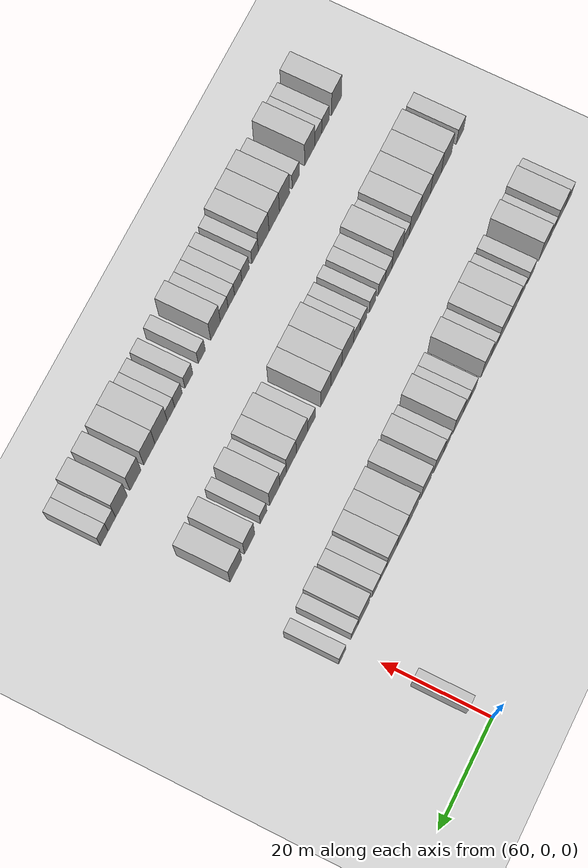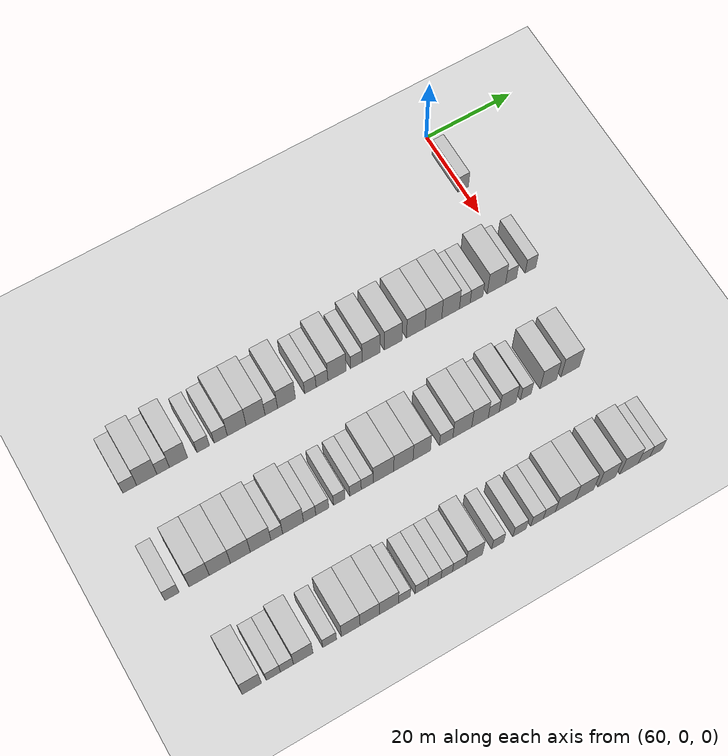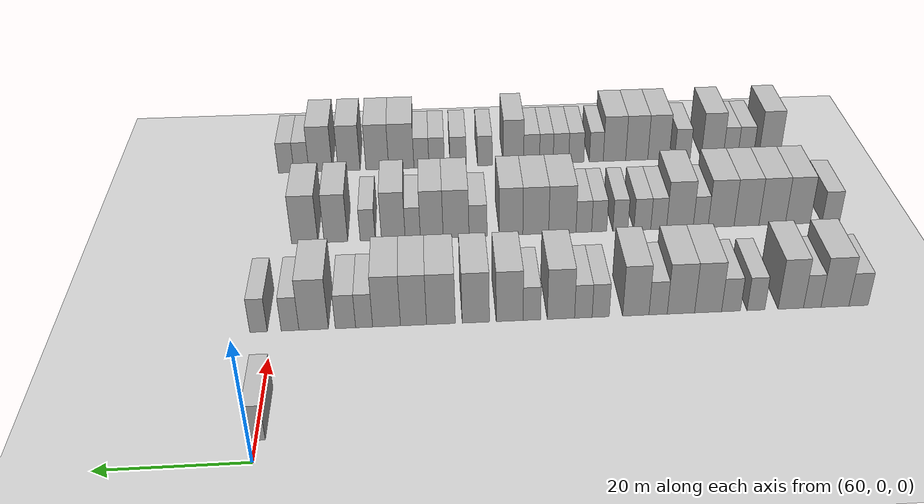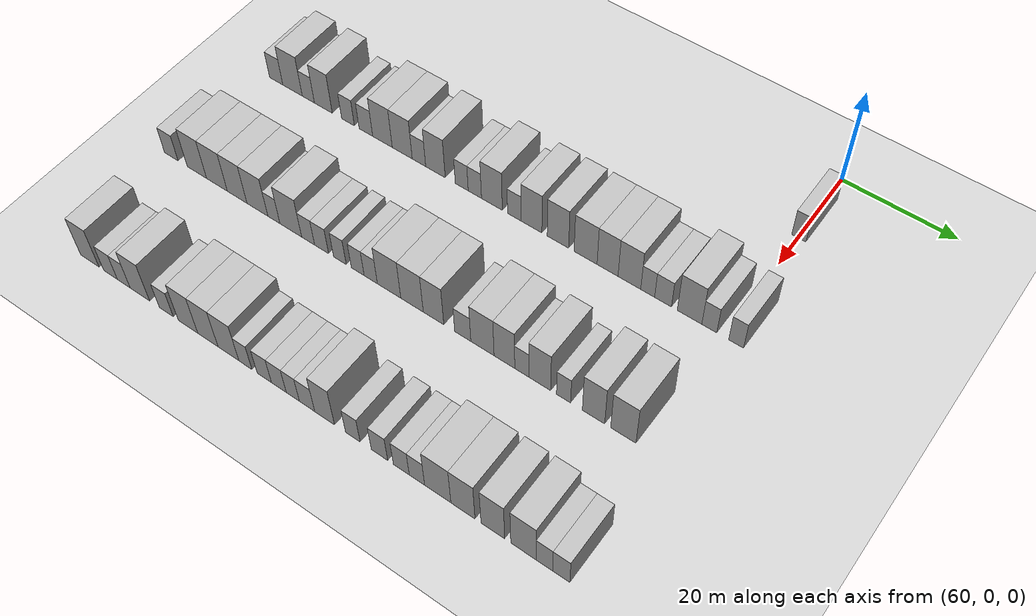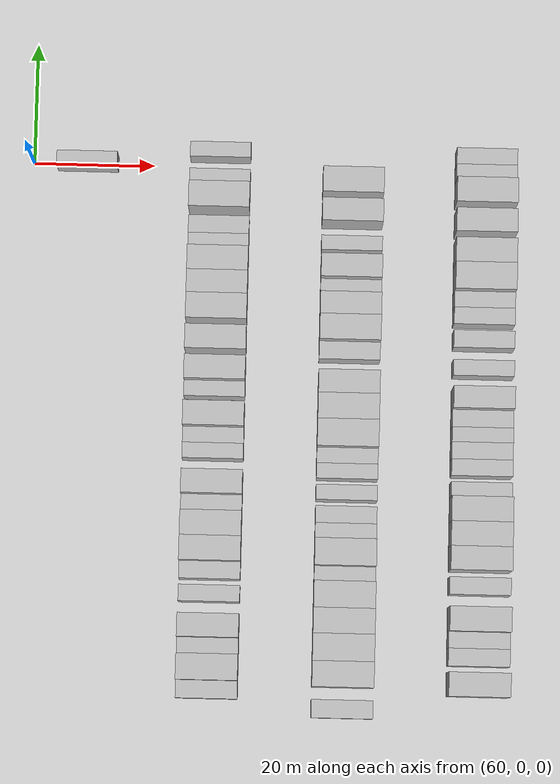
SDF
<sdf version="1.6">
 <world name="default">
  <include>
   <name>ground_plane_2</name>
   <uri>model://HANNAS_ground_plane</uri>
   <pose>100 0 0  0 0 0</pose>
  </include>
  <model name="building_479">
   <static>1</static>
   <pose>69.0000 0.0624 0 0.000000 0.000000 0.000000</pose>
   <link name="link">
    <pose>0 0 3.00 0 0 0</pose>
    <collision name="collision"><geometry><box><size>10.0000 2.4668 6.0000</size></box></geometry></collision>
    <visual name="visual">
     <cast_shadows>0</cast_shadows>
     <geometry><box><size>10.0000 2.4668 6.0000</size></box></geometry>
     <material>
      <script>
       <uri>model://HANNAS_wall/materials/scripts</uri>
       <uri>model://HANNAS_wall/materials/textures</uri>
       <name>vrc/HANNAS_wall</name>
      </script>
     </material>
    </visual>
   </link>
  </model>
  <model name="building_655">
   <static>1</static>
   <pose>91.0000 -86.5257 0 0.000000 0.000000 0.000000</pose>
   <link name="link">
    <pose>0 0 3.00 0 0 0</pose>
    <collision name="collision"><geometry><box><size>10.0000 2.9233 6.0000</size></box></geometry></collision>
    <visual name="visual">
     <cast_shadows>0</cast_shadows>
     <geometry><box><size>10.0000 2.9233 6.0000</size></box></geometry>
     <material>
      <script>
       <uri>model://HANNAS_wall/materials/scripts</uri>
       <uri>model://HANNAS_wall/materials/textures</uri>
       <name>vrc/HANNAS_wall</name>
      </script>
     </material>
    </visual>
   </link>
  </model>
  <model name="building_656">
   <static>1</static>
   <pose>91.0000 -82.9416 0 0.000000 0.000000 0.000000</pose>
   <link name="link">
    <pose>0 0 4.50 0 0 0</pose>
    <collision name="collision"><geometry><box><size>10.0000 4.2447 9.0000</size></box></geometry></collision>
    <visual name="visual">
     <cast_shadows>0</cast_shadows>
     <geometry><box><size>10.0000 4.2447 9.0000</size></box></geometry>
     <material>
      <script>
       <uri>model://HANNAS_wall/materials/scripts</uri>
       <uri>model://HANNAS_wall/materials/textures</uri>
       <name>vrc/HANNAS_wall</name>
      </script>
     </material>
    </visual>
   </link>
  </model>
  <model name="building_657">
   <static>1</static>
   <pose>91.0000 -79.4983 0 0.000000 0.000000 0.000000</pose>
   <link name="link">
    <pose>0 0 3.00 0 0 0</pose>
    <collision name="collision"><geometry><box><size>10.0000 2.6419 6.0000</size></box></geometry></collision>
    <visual name="visual">
     <cast_shadows>0</cast_shadows>
     <geometry><box><size>10.0000 2.6419 6.0000</size></box></geometry>
     <material>
      <script>
       <uri>model://HANNAS_wall/materials/scripts</uri>
       <uri>model://HANNAS_wall/materials/textures</uri>
       <name>vrc/HANNAS_wall</name>
      </script>
     </material>
    </visual>
   </link>
  </model>
  <model name="building_658">
   <static>1</static>
   <pose>91.0000 -76.2589 0 0.000000 0.000000 0.000000</pose>
   <link name="link">
    <pose>0 0 4.50 0 0 0</pose>
    <collision name="collision"><geometry><box><size>10.0000 3.8370 9.0000</size></box></geometry></collision>
    <visual name="visual">
     <cast_shadows>0</cast_shadows>
     <geometry><box><size>10.0000 3.8370 9.0000</size></box></geometry>
     <material>
      <script>
       <uri>model://HANNAS_wall/materials/scripts</uri>
       <uri>model://HANNAS_wall/materials/textures</uri>
       <name>vrc/HANNAS_wall</name>
      </script>
     </material>
    </visual>
   </link>
  </model>
  <model name="building_659">
   <static>1</static>
   <pose>91.0000 -71.0000 0 0.000000 0.000000 0.000000</pose>
   <link name="link">
    <pose>0 0 3.00 0 0 0</pose>
    <collision name="collision"><geometry><box><size>10.0000 2.6807 6.0000</size></box></geometry></collision>
    <visual name="visual">
     <cast_shadows>0</cast_shadows>
     <geometry><box><size>10.0000 2.6807 6.0000</size></box></geometry>
     <material>
      <script>
       <uri>model://HANNAS_wall/materials/scripts</uri>
       <uri>model://HANNAS_wall/materials/textures</uri>
       <name>vrc/HANNAS_wall</name>
      </script>
     </material>
    </visual>
   </link>
  </model>
  <model name="building_660">
   <static>1</static>
   <pose>91.0000 -67.2448 0 0.000000 0.000000 0.000000</pose>
   <link name="link">
    <pose>0 0 3.00 0 0 0</pose>
    <collision name="collision"><geometry><box><size>10.0000 2.8297 6.0000</size></box></geometry></collision>
    <visual name="visual">
     <cast_shadows>0</cast_shadows>
     <geometry><box><size>10.0000 2.8297 6.0000</size></box></geometry>
     <material>
      <script>
       <uri>model://HANNAS_wall/materials/scripts</uri>
       <uri>model://HANNAS_wall/materials/textures</uri>
       <name>vrc/HANNAS_wall</name>
      </script>
     </material>
    </visual>
   </link>
  </model>
  <model name="building_661">
   <static>1</static>
   <pose>91.0000 -63.8082 0 0.000000 0.000000 0.000000</pose>
   <link name="link">
    <pose>0 0 4.50 0 0 0</pose>
    <collision name="collision"><geometry><box><size>10.0000 4.0435 9.0000</size></box></geometry></collision>
    <visual name="visual">
     <cast_shadows>0</cast_shadows>
     <geometry><box><size>10.0000 4.0435 9.0000</size></box></geometry>
     <material>
      <script>
       <uri>model://HANNAS_wall/materials/scripts</uri>
       <uri>model://HANNAS_wall/materials/textures</uri>
       <name>vrc/HANNAS_wall</name>
      </script>
     </material>
    </visual>
   </link>
  </model>
  <model name="building_662">
   <static>1</static>
   <pose>91.0000 -59.7412 0 0.000000 0.000000 0.000000</pose>
   <link name="link">
    <pose>0 0 4.50 0 0 0</pose>
    <collision name="collision"><geometry><box><size>10.0000 4.0904 9.0000</size></box></geometry></collision>
    <visual name="visual">
     <cast_shadows>0</cast_shadows>
     <geometry><box><size>10.0000 4.0904 9.0000</size></box></geometry>
     <material>
      <script>
       <uri>model://HANNAS_wall/materials/scripts</uri>
       <uri>model://HANNAS_wall/materials/textures</uri>
       <name>vrc/HANNAS_wall</name>
      </script>
     </material>
    </visual>
   </link>
  </model>
  <model name="building_663">
   <static>1</static>
   <pose>91.0000 -56.3345 0 0.000000 0.000000 0.000000</pose>
   <link name="link">
    <pose>0 0 3.00 0 0 0</pose>
    <collision name="collision"><geometry><box><size>10.0000 2.7231 6.0000</size></box></geometry></collision>
    <visual name="visual">
     <cast_shadows>0</cast_shadows>
     <geometry><box><size>10.0000 2.7231 6.0000</size></box></geometry>
     <material>
      <script>
       <uri>model://HANNAS_wall/materials/scripts</uri>
       <uri>model://HANNAS_wall/materials/textures</uri>
       <name>vrc/HANNAS_wall</name>
      </script>
     </material>
    </visual>
   </link>
  </model>
  <model name="building_664">
   <static>1</static>
   <pose>91.0000 -53.0194 0 0.000000 0.000000 0.000000</pose>
   <link name="link">
    <pose>0 0 4.50 0 0 0</pose>
    <collision name="collision"><geometry><box><size>10.0000 3.9071 9.0000</size></box></geometry></collision>
    <visual name="visual">
     <cast_shadows>0</cast_shadows>
     <geometry><box><size>10.0000 3.9071 9.0000</size></box></geometry>
     <material>
      <script>
       <uri>model://HANNAS_wall/materials/scripts</uri>
       <uri>model://HANNAS_wall/materials/textures</uri>
       <name>vrc/HANNAS_wall</name>
      </script>
     </material>
    </visual>
   </link>
  </model>
  <model name="building_665">
   <static>1</static>
   <pose>91.0000 -47.7983 0 0.000000 0.000000 0.000000</pose>
   <link name="link">
    <pose>0 0 3.00 0 0 0</pose>
    <collision name="collision"><geometry><box><size>10.0000 2.5350 6.0000</size></box></geometry></collision>
    <visual name="visual">
     <cast_shadows>0</cast_shadows>
     <geometry><box><size>10.0000 2.5350 6.0000</size></box></geometry>
     <material>
      <script>
       <uri>model://HANNAS_wall/materials/scripts</uri>
       <uri>model://HANNAS_wall/materials/textures</uri>
       <name>vrc/HANNAS_wall</name>
      </script>
     </material>
    </visual>
   </link>
  </model>
  <model name="building_666">
   <static>1</static>
   <pose>91.0000 -45.2319 0 0.000000 0.000000 0.000000</pose>
   <link name="link">
    <pose>0 0 3.00 0 0 0</pose>
    <collision name="collision"><geometry><box><size>10.0000 2.5978 6.0000</size></box></geometry></collision>
    <visual name="visual">
     <cast_shadows>0</cast_shadows>
     <geometry><box><size>10.0000 2.5978 6.0000</size></box></geometry>
     <material>
      <script>
       <uri>model://HANNAS_wall/materials/scripts</uri>
       <uri>model://HANNAS_wall/materials/textures</uri>
       <name>vrc/HANNAS_wall</name>
      </script>
     </material>
    </visual>
   </link>
  </model>
  <model name="building_667">
   <static>1</static>
   <pose>91.0000 -41.9193 0 0.000000 0.000000 0.000000</pose>
   <link name="link">
    <pose>0 0 4.50 0 0 0</pose>
    <collision name="collision"><geometry><box><size>10.0000 4.0274 9.0000</size></box></geometry></collision>
    <visual name="visual">
     <cast_shadows>0</cast_shadows>
     <geometry><box><size>10.0000 4.0274 9.0000</size></box></geometry>
     <material>
      <script>
       <uri>model://HANNAS_wall/materials/scripts</uri>
       <uri>model://HANNAS_wall/materials/textures</uri>
       <name>vrc/HANNAS_wall</name>
      </script>
     </material>
    </visual>
   </link>
  </model>
  <model name="building_668">
   <static>1</static>
   <pose>91.0000 -37.6197 0 0.000000 0.000000 0.000000</pose>
   <link name="link">
    <pose>0 0 3.00 0 0 0</pose>
    <collision name="collision"><geometry><box><size>10.0000 2.5719 6.0000</size></box></geometry></collision>
    <visual name="visual">
     <cast_shadows>0</cast_shadows>
     <geometry><box><size>10.0000 2.5719 6.0000</size></box></geometry>
     <material>
      <script>
       <uri>model://HANNAS_wall/materials/scripts</uri>
       <uri>model://HANNAS_wall/materials/textures</uri>
       <name>vrc/HANNAS_wall</name>
      </script>
     </material>
    </visual>
   </link>
  </model>
  <model name="building_669">
   <static>1</static>
   <pose>91.0000 -34.3654 0 0.000000 0.000000 0.000000</pose>
   <link name="link">
    <pose>0 0 4.50 0 0 0</pose>
    <collision name="collision"><geometry><box><size>10.0000 3.9368 9.0000</size></box></geometry></collision>
    <visual name="visual">
     <cast_shadows>0</cast_shadows>
     <geometry><box><size>10.0000 3.9368 9.0000</size></box></geometry>
     <material>
      <script>
       <uri>model://HANNAS_wall/materials/scripts</uri>
       <uri>model://HANNAS_wall/materials/textures</uri>
       <name>vrc/HANNAS_wall</name>
      </script>
     </material>
    </visual>
   </link>
  </model>
  <model name="building_670">
   <static>1</static>
   <pose>91.0000 -29.4065 0 0.000000 0.000000 0.000000</pose>
   <link name="link">
    <pose>0 0 4.50 0 0 0</pose>
    <collision name="collision"><geometry><box><size>10.0000 3.9808 9.0000</size></box></geometry></collision>
    <visual name="visual">
     <cast_shadows>0</cast_shadows>
     <geometry><box><size>10.0000 3.9808 9.0000</size></box></geometry>
     <material>
      <script>
       <uri>model://HANNAS_wall/materials/scripts</uri>
       <uri>model://HANNAS_wall/materials/textures</uri>
       <name>vrc/HANNAS_wall</name>
      </script>
     </material>
    </visual>
   </link>
  </model>
  <model name="building_671">
   <static>1</static>
   <pose>91.0000 -24.3169 0 0.000000 0.000000 0.000000</pose>
   <link name="link">
    <pose>0 0 4.50 0 0 0</pose>
    <collision name="collision"><geometry><box><size>10.0000 4.1984 9.0000</size></box></geometry></collision>
    <visual name="visual">
     <cast_shadows>0</cast_shadows>
     <geometry><box><size>10.0000 4.1984 9.0000</size></box></geometry>
     <material>
      <script>
       <uri>model://HANNAS_wall/materials/scripts</uri>
       <uri>model://HANNAS_wall/materials/textures</uri>
       <name>vrc/HANNAS_wall</name>
      </script>
     </material>
    </visual>
   </link>
  </model>
  <model name="building_672">
   <static>1</static>
   <pose>91.0000 -20.3196 0 0.000000 0.000000 0.000000</pose>
   <link name="link">
    <pose>0 0 4.50 0 0 0</pose>
    <collision name="collision"><geometry><box><size>10.0000 3.7961 9.0000</size></box></geometry></collision>
    <visual name="visual">
     <cast_shadows>0</cast_shadows>
     <geometry><box><size>10.0000 3.7961 9.0000</size></box></geometry>
     <material>
      <script>
       <uri>model://HANNAS_wall/materials/scripts</uri>
       <uri>model://HANNAS_wall/materials/textures</uri>
       <name>vrc/HANNAS_wall</name>
      </script>
     </material>
    </visual>
   </link>
  </model>
  <model name="building_673">
   <static>1</static>
   <pose>91.0000 -16.4041 0 0.000000 0.000000 0.000000</pose>
   <link name="link">
    <pose>0 0 4.50 0 0 0</pose>
    <collision name="collision"><geometry><box><size>10.0000 4.0349 9.0000</size></box></geometry></collision>
    <visual name="visual">
     <cast_shadows>0</cast_shadows>
     <geometry><box><size>10.0000 4.0349 9.0000</size></box></geometry>
     <material>
      <script>
       <uri>model://HANNAS_wall/materials/scripts</uri>
       <uri>model://HANNAS_wall/materials/textures</uri>
       <name>vrc/HANNAS_wall</name>
      </script>
     </material>
    </visual>
   </link>
  </model>
  <model name="building_674">
   <static>1</static>
   <pose>91.0000 -13.1547 0 0.000000 0.000000 0.000000</pose>
   <link name="link">
    <pose>0 0 3.00 0 0 0</pose>
    <collision name="collision"><geometry><box><size>10.0000 2.4639 6.0000</size></box></geometry></collision>
    <visual name="visual">
     <cast_shadows>0</cast_shadows>
     <geometry><box><size>10.0000 2.4639 6.0000</size></box></geometry>
     <material>
      <script>
       <uri>model://HANNAS_wall/materials/scripts</uri>
       <uri>model://HANNAS_wall/materials/textures</uri>
       <name>vrc/HANNAS_wall</name>
      </script>
     </material>
    </visual>
   </link>
  </model>
  <model name="building_675">
   <static>1</static>
   <pose>91.0000 -10.4546 0 0.000000 0.000000 0.000000</pose>
   <link name="link">
    <pose>0 0 3.00 0 0 0</pose>
    <collision name="collision"><geometry><box><size>10.0000 2.9363 6.0000</size></box></geometry></collision>
    <visual name="visual">
     <cast_shadows>0</cast_shadows>
     <geometry><box><size>10.0000 2.9363 6.0000</size></box></geometry>
     <material>
      <script>
       <uri>model://HANNAS_wall/materials/scripts</uri>
       <uri>model://HANNAS_wall/materials/textures</uri>
       <name>vrc/HANNAS_wall</name>
      </script>
     </material>
    </visual>
   </link>
  </model>
  <model name="building_676">
   <static>1</static>
   <pose>91.0000 -5.8685 0 0.000000 0.000000 0.000000</pose>
   <link name="link">
    <pose>0 0 4.50 0 0 0</pose>
    <collision name="collision"><geometry><box><size>10.0000 4.2360 9.0000</size></box></geometry></collision>
    <visual name="visual">
     <cast_shadows>0</cast_shadows>
     <geometry><box><size>10.0000 4.2360 9.0000</size></box></geometry>
     <material>
      <script>
       <uri>model://HANNAS_wall/materials/scripts</uri>
       <uri>model://HANNAS_wall/materials/textures</uri>
       <name>vrc/HANNAS_wall</name>
      </script>
     </material>
    </visual>
   </link>
  </model>
  <model name="building_677">
   <static>1</static>
   <pose>91.0000 -2.4733 0 0.000000 0.000000 0.000000</pose>
   <link name="link">
    <pose>0 0 3.00 0 0 0</pose>
    <collision name="collision"><geometry><box><size>10.0000 2.5545 6.0000</size></box></geometry></collision>
    <visual name="visual">
     <cast_shadows>0</cast_shadows>
     <geometry><box><size>10.0000 2.5545 6.0000</size></box></geometry>
     <material>
      <script>
       <uri>model://HANNAS_wall/materials/scripts</uri>
       <uri>model://HANNAS_wall/materials/textures</uri>
       <name>vrc/HANNAS_wall</name>
      </script>
     </material>
    </visual>
   </link>
  </model>
  <model name="building_678">
   <static>1</static>
   <pose>91.0000 2.0546 0 0.000000 0.000000 0.000000</pose>
   <link name="link">
    <pose>0 0 3.00 0 0 0</pose>
    <collision name="collision"><geometry><box><size>10.0000 2.5013 6.0000</size></box></geometry></collision>
    <visual name="visual">
     <cast_shadows>0</cast_shadows>
     <geometry><box><size>10.0000 2.5013 6.0000</size></box></geometry>
     <material>
      <script>
       <uri>model://HANNAS_wall/materials/scripts</uri>
       <uri>model://HANNAS_wall/materials/textures</uri>
       <name>vrc/HANNAS_wall</name>
      </script>
     </material>
    </visual>
   </link>
  </model>
  <model name="building_845">
   <static>1</static>
   <pose>113.0000 -89.1876 0 0.000000 0.000000 0.000000</pose>
   <link name="link">
    <pose>0 0 3.00 0 0 0</pose>
    <collision name="collision"><geometry><box><size>10.0000 2.9720 6.0000</size></box></geometry></collision>
    <visual name="visual">
     <cast_shadows>0</cast_shadows>
     <geometry><box><size>10.0000 2.9720 6.0000</size></box></geometry>
     <material>
      <script>
       <uri>model://HANNAS_wall/materials/scripts</uri>
       <uri>model://HANNAS_wall/materials/textures</uri>
       <name>vrc/HANNAS_wall</name>
      </script>
     </material>
    </visual>
   </link>
  </model>
  <model name="building_846">
   <static>1</static>
   <pose>113.0000 -83.6121 0 0.000000 0.000000 0.000000</pose>
   <link name="link">
    <pose>0 0 4.50 0 0 0</pose>
    <collision name="collision"><geometry><box><size>10.0000 4.1791 9.0000</size></box></geometry></collision>
    <visual name="visual">
     <cast_shadows>0</cast_shadows>
     <geometry><box><size>10.0000 4.1791 9.0000</size></box></geometry>
     <material>
      <script>
       <uri>model://HANNAS_wall/materials/scripts</uri>
       <uri>model://HANNAS_wall/materials/textures</uri>
       <name>vrc/HANNAS_wall</name>
      </script>
     </material>
    </visual>
   </link>
  </model>
  <model name="building_847">
   <static>1</static>
   <pose>113.0000 -79.3144 0 0.000000 0.000000 0.000000</pose>
   <link name="link">
    <pose>0 0 4.50 0 0 0</pose>
    <collision name="collision"><geometry><box><size>10.0000 4.4164 9.0000</size></box></geometry></collision>
    <visual name="visual">
     <cast_shadows>0</cast_shadows>
     <geometry><box><size>10.0000 4.4164 9.0000</size></box></geometry>
     <material>
      <script>
       <uri>model://HANNAS_wall/materials/scripts</uri>
       <uri>model://HANNAS_wall/materials/textures</uri>
       <name>vrc/HANNAS_wall</name>
      </script>
     </material>
    </visual>
   </link>
  </model>
  <model name="building_848">
   <static>1</static>
   <pose>113.0000 -75.0384 0 0.000000 0.000000 0.000000</pose>
   <link name="link">
    <pose>0 0 4.50 0 0 0</pose>
    <collision name="collision"><geometry><box><size>10.0000 4.1355 9.0000</size></box></geometry></collision>
    <visual name="visual">
     <cast_shadows>0</cast_shadows>
     <geometry><box><size>10.0000 4.1355 9.0000</size></box></geometry>
     <material>
      <script>
       <uri>model://HANNAS_wall/materials/scripts</uri>
       <uri>model://HANNAS_wall/materials/textures</uri>
       <name>vrc/HANNAS_wall</name>
      </script>
     </material>
    </visual>
   </link>
  </model>
  <model name="building_849">
   <static>1</static>
   <pose>113.0000 -70.8037 0 0.000000 0.000000 0.000000</pose>
   <link name="link">
    <pose>0 0 4.50 0 0 0</pose>
    <collision name="collision"><geometry><box><size>10.0000 4.3338 9.0000</size></box></geometry></collision>
    <visual name="visual">
     <cast_shadows>0</cast_shadows>
     <geometry><box><size>10.0000 4.3338 9.0000</size></box></geometry>
     <material>
      <script>
       <uri>model://HANNAS_wall/materials/scripts</uri>
       <uri>model://HANNAS_wall/materials/textures</uri>
       <name>vrc/HANNAS_wall</name>
      </script>
     </material>
    </visual>
   </link>
  </model>
  <model name="building_850">
   <static>1</static>
   <pose>113.0000 -67.3962 0 0.000000 0.000000 0.000000</pose>
   <link name="link">
    <pose>0 0 3.00 0 0 0</pose>
    <collision name="collision"><geometry><box><size>10.0000 2.4813 6.0000</size></box></geometry></collision>
    <visual name="visual">
     <cast_shadows>0</cast_shadows>
     <geometry><box><size>10.0000 2.4813 6.0000</size></box></geometry>
     <material>
      <script>
       <uri>model://HANNAS_wall/materials/scripts</uri>
       <uri>model://HANNAS_wall/materials/textures</uri>
       <name>vrc/HANNAS_wall</name>
      </script>
     </material>
    </visual>
   </link>
  </model>
  <model name="building_851">
   <static>1</static>
   <pose>113.0000 -63.9504 0 0.000000 0.000000 0.000000</pose>
   <link name="link">
    <pose>0 0 4.50 0 0 0</pose>
    <collision name="collision"><geometry><box><size>10.0000 4.4103 9.0000</size></box></geometry></collision>
    <visual name="visual">
     <cast_shadows>0</cast_shadows>
     <geometry><box><size>10.0000 4.4103 9.0000</size></box></geometry>
     <material>
      <script>
       <uri>model://HANNAS_wall/materials/scripts</uri>
       <uri>model://HANNAS_wall/materials/textures</uri>
       <name>vrc/HANNAS_wall</name>
      </script>
     </material>
    </visual>
   </link>
  </model>
  <model name="building_852">
   <static>1</static>
   <pose>113.0000 -60.4406 0 0.000000 0.000000 0.000000</pose>
   <link name="link">
    <pose>0 0 3.00 0 0 0</pose>
    <collision name="collision"><geometry><box><size>10.0000 2.6092 6.0000</size></box></geometry></collision>
    <visual name="visual">
     <cast_shadows>0</cast_shadows>
     <geometry><box><size>10.0000 2.6092 6.0000</size></box></geometry>
     <material>
      <script>
       <uri>model://HANNAS_wall/materials/scripts</uri>
       <uri>model://HANNAS_wall/materials/textures</uri>
       <name>vrc/HANNAS_wall</name>
      </script>
     </material>
    </visual>
   </link>
  </model>
  <model name="building_853">
   <static>1</static>
   <pose>113.0000 -57.7490 0 0.000000 0.000000 0.000000</pose>
   <link name="link">
    <pose>0 0 3.00 0 0 0</pose>
    <collision name="collision"><geometry><box><size>10.0000 2.7740 6.0000</size></box></geometry></collision>
    <visual name="visual">
     <cast_shadows>0</cast_shadows>
     <geometry><box><size>10.0000 2.7740 6.0000</size></box></geometry>
     <material>
      <script>
       <uri>model://HANNAS_wall/materials/scripts</uri>
       <uri>model://HANNAS_wall/materials/textures</uri>
       <name>vrc/HANNAS_wall</name>
      </script>
     </material>
    </visual>
   </link>
  </model>
  <model name="building_854">
   <static>1</static>
   <pose>113.0000 -54.1233 0 0.000000 0.000000 0.000000</pose>
   <link name="link">
    <pose>0 0 3.00 0 0 0</pose>
    <collision name="collision"><geometry><box><size>10.0000 2.4774 6.0000</size></box></geometry></collision>
    <visual name="visual">
     <cast_shadows>0</cast_shadows>
     <geometry><box><size>10.0000 2.4774 6.0000</size></box></geometry>
     <material>
      <script>
       <uri>model://HANNAS_wall/materials/scripts</uri>
       <uri>model://HANNAS_wall/materials/textures</uri>
       <name>vrc/HANNAS_wall</name>
      </script>
     </material>
    </visual>
   </link>
  </model>
  <model name="building_855">
   <static>1</static>
   <pose>113.0000 -50.6403 0 0.000000 0.000000 0.000000</pose>
   <link name="link">
    <pose>0 0 3.00 0 0 0</pose>
    <collision name="collision"><geometry><box><size>10.0000 2.4886 6.0000</size></box></geometry></collision>
    <visual name="visual">
     <cast_shadows>0</cast_shadows>
     <geometry><box><size>10.0000 2.4886 6.0000</size></box></geometry>
     <material>
      <script>
       <uri>model://HANNAS_wall/materials/scripts</uri>
       <uri>model://HANNAS_wall/materials/textures</uri>
       <name>vrc/HANNAS_wall</name>
      </script>
     </material>
    </visual>
   </link>
  </model>
  <model name="building_856">
   <static>1</static>
   <pose>113.0000 -48.1162 0 0.000000 0.000000 0.000000</pose>
   <link name="link">
    <pose>0 0 3.00 0 0 0</pose>
    <collision name="collision"><geometry><box><size>10.0000 2.5594 6.0000</size></box></geometry></collision>
    <visual name="visual">
     <cast_shadows>0</cast_shadows>
     <geometry><box><size>10.0000 2.5594 6.0000</size></box></geometry>
     <material>
      <script>
       <uri>model://HANNAS_wall/materials/scripts</uri>
       <uri>model://HANNAS_wall/materials/textures</uri>
       <name>vrc/HANNAS_wall</name>
      </script>
     </material>
    </visual>
   </link>
  </model>
  <model name="building_857">
   <static>1</static>
   <pose>113.0000 -44.6010 0 0.000000 0.000000 0.000000</pose>
   <link name="link">
    <pose>0 0 4.50 0 0 0</pose>
    <collision name="collision"><geometry><box><size>10.0000 4.4710 9.0000</size></box></geometry></collision>
    <visual name="visual">
     <cast_shadows>0</cast_shadows>
     <geometry><box><size>10.0000 4.4710 9.0000</size></box></geometry>
     <material>
      <script>
       <uri>model://HANNAS_wall/materials/scripts</uri>
       <uri>model://HANNAS_wall/materials/textures</uri>
       <name>vrc/HANNAS_wall</name>
      </script>
     </material>
    </visual>
   </link>
  </model>
  <model name="building_858">
   <static>1</static>
   <pose>113.0000 -40.2517 0 0.000000 0.000000 0.000000</pose>
   <link name="link">
    <pose>0 0 4.50 0 0 0</pose>
    <collision name="collision"><geometry><box><size>10.0000 4.2276 9.0000</size></box></geometry></collision>
    <visual name="visual">
     <cast_shadows>0</cast_shadows>
     <geometry><box><size>10.0000 4.2276 9.0000</size></box></geometry>
     <material>
      <script>
       <uri>model://HANNAS_wall/materials/scripts</uri>
       <uri>model://HANNAS_wall/materials/textures</uri>
       <name>vrc/HANNAS_wall</name>
      </script>
     </material>
    </visual>
   </link>
  </model>
  <model name="building_859">
   <static>1</static>
   <pose>113.0000 -36.2334 0 0.000000 0.000000 0.000000</pose>
   <link name="link">
    <pose>0 0 4.50 0 0 0</pose>
    <collision name="collision"><geometry><box><size>10.0000 3.8091 9.0000</size></box></geometry></collision>
    <visual name="visual">
     <cast_shadows>0</cast_shadows>
     <geometry><box><size>10.0000 3.8091 9.0000</size></box></geometry>
     <material>
      <script>
       <uri>model://HANNAS_wall/materials/scripts</uri>
       <uri>model://HANNAS_wall/materials/textures</uri>
       <name>vrc/HANNAS_wall</name>
      </script>
     </material>
    </visual>
   </link>
  </model>
  <model name="building_860">
   <static>1</static>
   <pose>113.0000 -30.8569 0 0.000000 0.000000 0.000000</pose>
   <link name="link">
    <pose>0 0 3.00 0 0 0</pose>
    <collision name="collision"><geometry><box><size>10.0000 2.9438 6.0000</size></box></geometry></collision>
    <visual name="visual">
     <cast_shadows>0</cast_shadows>
     <geometry><box><size>10.0000 2.9438 6.0000</size></box></geometry>
     <material>
      <script>
       <uri>model://HANNAS_wall/materials/scripts</uri>
       <uri>model://HANNAS_wall/materials/textures</uri>
       <name>vrc/HANNAS_wall</name>
      </script>
     </material>
    </visual>
   </link>
  </model>
  <model name="building_861">
   <static>1</static>
   <pose>113.0000 -27.2935 0 0.000000 0.000000 0.000000</pose>
   <link name="link">
    <pose>0 0 4.50 0 0 0</pose>
    <collision name="collision"><geometry><box><size>10.0000 4.1831 9.0000</size></box></geometry></collision>
    <visual name="visual">
     <cast_shadows>0</cast_shadows>
     <geometry><box><size>10.0000 4.1831 9.0000</size></box></geometry>
     <material>
      <script>
       <uri>model://HANNAS_wall/materials/scripts</uri>
       <uri>model://HANNAS_wall/materials/textures</uri>
       <name>vrc/HANNAS_wall</name>
      </script>
     </material>
    </visual>
   </link>
  </model>
  <model name="building_862">
   <static>1</static>
   <pose>113.0000 -23.3608 0 0.000000 0.000000 0.000000</pose>
   <link name="link">
    <pose>0 0 4.50 0 0 0</pose>
    <collision name="collision"><geometry><box><size>10.0000 3.6822 9.0000</size></box></geometry></collision>
    <visual name="visual">
     <cast_shadows>0</cast_shadows>
     <geometry><box><size>10.0000 3.6822 9.0000</size></box></geometry>
     <material>
      <script>
       <uri>model://HANNAS_wall/materials/scripts</uri>
       <uri>model://HANNAS_wall/materials/textures</uri>
       <name>vrc/HANNAS_wall</name>
      </script>
     </material>
    </visual>
   </link>
  </model>
  <model name="building_863">
   <static>1</static>
   <pose>113.0000 -20.2940 0 0.000000 0.000000 0.000000</pose>
   <link name="link">
    <pose>0 0 3.00 0 0 0</pose>
    <collision name="collision"><geometry><box><size>10.0000 2.4515 6.0000</size></box></geometry></collision>
    <visual name="visual">
     <cast_shadows>0</cast_shadows>
     <geometry><box><size>10.0000 2.4515 6.0000</size></box></geometry>
     <material>
      <script>
       <uri>model://HANNAS_wall/materials/scripts</uri>
       <uri>model://HANNAS_wall/materials/textures</uri>
       <name>vrc/HANNAS_wall</name>
      </script>
     </material>
    </visual>
   </link>
  </model>
  <model name="building_864">
   <static>1</static>
   <pose>113.0000 -17.1589 0 0.000000 0.000000 0.000000</pose>
   <link name="link">
    <pose>0 0 4.50 0 0 0</pose>
    <collision name="collision"><geometry><box><size>10.0000 3.8187 9.0000</size></box></geometry></collision>
    <visual name="visual">
     <cast_shadows>0</cast_shadows>
     <geometry><box><size>10.0000 3.8187 9.0000</size></box></geometry>
     <material>
      <script>
       <uri>model://HANNAS_wall/materials/scripts</uri>
       <uri>model://HANNAS_wall/materials/textures</uri>
       <name>vrc/HANNAS_wall</name>
      </script>
     </material>
    </visual>
   </link>
  </model>
  <model name="building_865">
   <static>1</static>
   <pose>113.0000 -13.0384 0 0.000000 0.000000 0.000000</pose>
   <link name="link">
    <pose>0 0 3.00 0 0 0</pose>
    <collision name="collision"><geometry><box><size>10.0000 2.4223 6.0000</size></box></geometry></collision>
    <visual name="visual">
     <cast_shadows>0</cast_shadows>
     <geometry><box><size>10.0000 2.4223 6.0000</size></box></geometry>
     <material>
      <script>
       <uri>model://HANNAS_wall/materials/scripts</uri>
       <uri>model://HANNAS_wall/materials/textures</uri>
       <name>vrc/HANNAS_wall</name>
      </script>
     </material>
    </visual>
   </link>
  </model>
  <model name="building_866">
   <static>1</static>
   <pose>113.0000 -7.9432 0 0.000000 0.000000 0.000000</pose>
   <link name="link">
    <pose>0 0 4.50 0 0 0</pose>
    <collision name="collision"><geometry><box><size>10.0000 3.7680 9.0000</size></box></geometry></collision>
    <visual name="visual">
     <cast_shadows>0</cast_shadows>
     <geometry><box><size>10.0000 3.7680 9.0000</size></box></geometry>
     <material>
      <script>
       <uri>model://HANNAS_wall/materials/scripts</uri>
       <uri>model://HANNAS_wall/materials/textures</uri>
       <name>vrc/HANNAS_wall</name>
      </script>
     </material>
    </visual>
   </link>
  </model>
  <model name="building_867">
   <static>1</static>
   <pose>113.0000 -2.9595 0 0.000000 0.000000 0.000000</pose>
   <link name="link">
    <pose>0 0 4.50 0 0 0</pose>
    <collision name="collision"><geometry><box><size>10.0000 4.1996 9.0000</size></box></geometry></collision>
    <visual name="visual">
     <cast_shadows>0</cast_shadows>
     <geometry><box><size>10.0000 4.1996 9.0000</size></box></geometry>
     <material>
      <script>
       <uri>model://HANNAS_wall/materials/scripts</uri>
       <uri>model://HANNAS_wall/materials/textures</uri>
       <name>vrc/HANNAS_wall</name>
      </script>
     </material>
    </visual>
   </link>
  </model>
  <model name="building_1031">
   <static>1</static>
   <pose>135.0000 -84.7612 0 0.000000 0.000000 0.000000</pose>
   <link name="link">
    <pose>0 0 4.50 0 0 0</pose>
    <collision name="collision"><geometry><box><size>10.0000 3.9199 9.0000</size></box></geometry></collision>
    <visual name="visual">
     <cast_shadows>0</cast_shadows>
     <geometry><box><size>10.0000 3.9199 9.0000</size></box></geometry>
     <material>
      <script>
       <uri>model://HANNAS_wall/materials/scripts</uri>
       <uri>model://HANNAS_wall/materials/textures</uri>
       <name>vrc/HANNAS_wall</name>
      </script>
     </material>
    </visual>
   </link>
  </model>
  <model name="building_1032">
   <static>1</static>
   <pose>135.0000 -80.3624 0 0.000000 0.000000 0.000000</pose>
   <link name="link">
    <pose>0 0 3.00 0 0 0</pose>
    <collision name="collision"><geometry><box><size>10.0000 2.8777 6.0000</size></box></geometry></collision>
    <visual name="visual">
     <cast_shadows>0</cast_shadows>
     <geometry><box><size>10.0000 2.8777 6.0000</size></box></geometry>
     <material>
      <script>
       <uri>model://HANNAS_wall/materials/scripts</uri>
       <uri>model://HANNAS_wall/materials/textures</uri>
       <name>vrc/HANNAS_wall</name>
      </script>
     </material>
    </visual>
   </link>
  </model>
  <model name="building_1033">
   <static>1</static>
   <pose>135.0000 -77.5856 0 0.000000 0.000000 0.000000</pose>
   <link name="link">
    <pose>0 0 3.00 0 0 0</pose>
    <collision name="collision"><geometry><box><size>10.0000 2.6759 6.0000</size></box></geometry></collision>
    <visual name="visual">
     <cast_shadows>0</cast_shadows>
     <geometry><box><size>10.0000 2.6759 6.0000</size></box></geometry>
     <material>
      <script>
       <uri>model://HANNAS_wall/materials/scripts</uri>
       <uri>model://HANNAS_wall/materials/textures</uri>
       <name>vrc/HANNAS_wall</name>
      </script>
     </material>
    </visual>
   </link>
  </model>
  <model name="building_1034">
   <static>1</static>
   <pose>135.0000 -74.2432 0 0.000000 0.000000 0.000000</pose>
   <link name="link">
    <pose>0 0 4.50 0 0 0</pose>
    <collision name="collision"><geometry><box><size>10.0000 4.0088 9.0000</size></box></geometry></collision>
    <visual name="visual">
     <cast_shadows>0</cast_shadows>
     <geometry><box><size>10.0000 4.0088 9.0000</size></box></geometry>
     <material>
      <script>
       <uri>model://HANNAS_wall/materials/scripts</uri>
       <uri>model://HANNAS_wall/materials/textures</uri>
       <name>vrc/HANNAS_wall</name>
      </script>
     </material>
    </visual>
   </link>
  </model>
  <model name="building_1035">
   <static>1</static>
   <pose>135.0000 -68.8142 0 0.000000 0.000000 0.000000</pose>
   <link name="link">
    <pose>0 0 3.00 0 0 0</pose>
    <collision name="collision"><geometry><box><size>10.0000 2.8491 6.0000</size></box></geometry></collision>
    <visual name="visual">
     <cast_shadows>0</cast_shadows>
     <geometry><box><size>10.0000 2.8491 6.0000</size></box></geometry>
     <material>
      <script>
       <uri>model://HANNAS_wall/materials/scripts</uri>
       <uri>model://HANNAS_wall/materials/textures</uri>
       <name>vrc/HANNAS_wall</name>
      </script>
     </material>
    </visual>
   </link>
  </model>
  <model name="building_1036">
   <static>1</static>
   <pose>135.0000 -64.4454 0 0.000000 0.000000 0.000000</pose>
   <link name="link">
    <pose>0 0 4.50 0 0 0</pose>
    <collision name="collision"><geometry><box><size>10.0000 3.8885 9.0000</size></box></geometry></collision>
    <visual name="visual">
     <cast_shadows>0</cast_shadows>
     <geometry><box><size>10.0000 3.8885 9.0000</size></box></geometry>
     <material>
      <script>
       <uri>model://HANNAS_wall/materials/scripts</uri>
       <uri>model://HANNAS_wall/materials/textures</uri>
       <name>vrc/HANNAS_wall</name>
      </script>
     </material>
    </visual>
   </link>
  </model>
  <model name="building_1037">
   <static>1</static>
   <pose>135.0000 -60.4966 0 0.000000 0.000000 0.000000</pose>
   <link name="link">
    <pose>0 0 4.50 0 0 0</pose>
    <collision name="collision"><geometry><box><size>10.0000 4.0091 9.0000</size></box></geometry></collision>
    <visual name="visual">
     <cast_shadows>0</cast_shadows>
     <geometry><box><size>10.0000 4.0091 9.0000</size></box></geometry>
     <material>
      <script>
       <uri>model://HANNAS_wall/materials/scripts</uri>
       <uri>model://HANNAS_wall/materials/textures</uri>
       <name>vrc/HANNAS_wall</name>
      </script>
     </material>
    </visual>
   </link>
  </model>
  <model name="building_1038">
   <static>1</static>
   <pose>135.0000 -56.4636 0 0.000000 0.000000 0.000000</pose>
   <link name="link">
    <pose>0 0 4.50 0 0 0</pose>
    <collision name="collision"><geometry><box><size>10.0000 4.0569 9.0000</size></box></geometry></collision>
    <visual name="visual">
     <cast_shadows>0</cast_shadows>
     <geometry><box><size>10.0000 4.0569 9.0000</size></box></geometry>
     <material>
      <script>
       <uri>model://HANNAS_wall/materials/scripts</uri>
       <uri>model://HANNAS_wall/materials/textures</uri>
       <name>vrc/HANNAS_wall</name>
      </script>
     </material>
    </visual>
   </link>
  </model>
  <model name="building_1039">
   <static>1</static>
   <pose>135.0000 -53.1829 0 0.000000 0.000000 0.000000</pose>
   <link name="link">
    <pose>0 0 3.00 0 0 0</pose>
    <collision name="collision"><geometry><box><size>10.0000 2.5044 6.0000</size></box></geometry></collision>
    <visual name="visual">
     <cast_shadows>0</cast_shadows>
     <geometry><box><size>10.0000 2.5044 6.0000</size></box></geometry>
     <material>
      <script>
       <uri>model://HANNAS_wall/materials/scripts</uri>
       <uri>model://HANNAS_wall/materials/textures</uri>
       <name>vrc/HANNAS_wall</name>
      </script>
     </material>
    </visual>
   </link>
  </model>
  <model name="building_1040">
   <static>1</static>
   <pose>135.0000 -49.5671 0 0.000000 0.000000 0.000000</pose>
   <link name="link">
    <pose>0 0 3.00 0 0 0</pose>
    <collision name="collision"><geometry><box><size>10.0000 2.7271 6.0000</size></box></geometry></collision>
    <visual name="visual">
     <cast_shadows>0</cast_shadows>
     <geometry><box><size>10.0000 2.7271 6.0000</size></box></geometry>
     <material>
      <script>
       <uri>model://HANNAS_wall/materials/scripts</uri>
       <uri>model://HANNAS_wall/materials/textures</uri>
       <name>vrc/HANNAS_wall</name>
      </script>
     </material>
    </visual>
   </link>
  </model>
  <model name="building_1041">
   <static>1</static>
   <pose>135.0000 -46.8106 0 0.000000 0.000000 0.000000</pose>
   <link name="link">
    <pose>0 0 3.00 0 0 0</pose>
    <collision name="collision"><geometry><box><size>10.0000 2.7859 6.0000</size></box></geometry></collision>
    <visual name="visual">
     <cast_shadows>0</cast_shadows>
     <geometry><box><size>10.0000 2.7859 6.0000</size></box></geometry>
     <material>
      <script>
       <uri>model://HANNAS_wall/materials/scripts</uri>
       <uri>model://HANNAS_wall/materials/textures</uri>
       <name>vrc/HANNAS_wall</name>
      </script>
     </material>
    </visual>
   </link>
  </model>
  <model name="building_1042">
   <static>1</static>
   <pose>135.0000 -44.1924 0 0.000000 0.000000 0.000000</pose>
   <link name="link">
    <pose>0 0 3.00 0 0 0</pose>
    <collision name="collision"><geometry><box><size>10.0000 2.4506 6.0000</size></box></geometry></collision>
    <visual name="visual">
     <cast_shadows>0</cast_shadows>
     <geometry><box><size>10.0000 2.4506 6.0000</size></box></geometry>
     <material>
      <script>
       <uri>model://HANNAS_wall/materials/scripts</uri>
       <uri>model://HANNAS_wall/materials/textures</uri>
       <name>vrc/HANNAS_wall</name>
      </script>
     </material>
    </visual>
   </link>
  </model>
  <model name="building_1043">
   <static>1</static>
   <pose>135.0000 -41.5482 0 0.000000 0.000000 0.000000</pose>
   <link name="link">
    <pose>0 0 3.00 0 0 0</pose>
    <collision name="collision"><geometry><box><size>10.0000 2.8378 6.0000</size></box></geometry></collision>
    <visual name="visual">
     <cast_shadows>0</cast_shadows>
     <geometry><box><size>10.0000 2.8378 6.0000</size></box></geometry>
     <material>
      <script>
       <uri>model://HANNAS_wall/materials/scripts</uri>
       <uri>model://HANNAS_wall/materials/textures</uri>
       <name>vrc/HANNAS_wall</name>
      </script>
     </material>
    </visual>
   </link>
  </model>
  <model name="building_1044">
   <static>1</static>
   <pose>135.0000 -38.3205 0 0.000000 0.000000 0.000000</pose>
   <link name="link">
    <pose>0 0 4.50 0 0 0</pose>
    <collision name="collision"><geometry><box><size>10.0000 3.6176 9.0000</size></box></geometry></collision>
    <visual name="visual">
     <cast_shadows>0</cast_shadows>
     <geometry><box><size>10.0000 3.6176 9.0000</size></box></geometry>
     <material>
      <script>
       <uri>model://HANNAS_wall/materials/scripts</uri>
       <uri>model://HANNAS_wall/materials/textures</uri>
       <name>vrc/HANNAS_wall</name>
      </script>
     </material>
    </visual>
   </link>
  </model>
  <model name="building_1045">
   <static>1</static>
   <pose>135.0000 -33.2021 0 0.000000 0.000000 0.000000</pose>
   <link name="link">
    <pose>0 0 3.00 0 0 0</pose>
    <collision name="collision"><geometry><box><size>10.0000 2.6191 6.0000</size></box></geometry></collision>
    <visual name="visual">
     <cast_shadows>0</cast_shadows>
     <geometry><box><size>10.0000 2.6191 6.0000</size></box></geometry>
     <material>
      <script>
       <uri>model://HANNAS_wall/materials/scripts</uri>
       <uri>model://HANNAS_wall/materials/textures</uri>
       <name>vrc/HANNAS_wall</name>
      </script>
     </material>
    </visual>
   </link>
  </model>
  <model name="building_1046">
   <static>1</static>
   <pose>135.0000 -28.4517 0 0.000000 0.000000 0.000000</pose>
   <link name="link">
    <pose>0 0 3.00 0 0 0</pose>
    <collision name="collision"><geometry><box><size>10.0000 2.8817 6.0000</size></box></geometry></collision>
    <visual name="visual">
     <cast_shadows>0</cast_shadows>
     <geometry><box><size>10.0000 2.8817 6.0000</size></box></geometry>
     <material>
      <script>
       <uri>model://HANNAS_wall/materials/scripts</uri>
       <uri>model://HANNAS_wall/materials/textures</uri>
       <name>vrc/HANNAS_wall</name>
      </script>
     </material>
    </visual>
   </link>
  </model>
  <model name="building_1047">
   <static>1</static>
   <pose>135.0000 -24.6274 0 0.000000 0.000000 0.000000</pose>
   <link name="link">
    <pose>0 0 3.00 0 0 0</pose>
    <collision name="collision"><geometry><box><size>10.0000 2.7670 6.0000</size></box></geometry></collision>
    <visual name="visual">
     <cast_shadows>0</cast_shadows>
     <geometry><box><size>10.0000 2.7670 6.0000</size></box></geometry>
     <material>
      <script>
       <uri>model://HANNAS_wall/materials/scripts</uri>
       <uri>model://HANNAS_wall/materials/textures</uri>
       <name>vrc/HANNAS_wall</name>
      </script>
     </material>
    </visual>
   </link>
  </model>
  <model name="building_1048">
   <static>1</static>
   <pose>135.0000 -21.9126 0 0.000000 0.000000 0.000000</pose>
   <link name="link">
    <pose>0 0 3.00 0 0 0</pose>
    <collision name="collision"><geometry><box><size>10.0000 2.6626 6.0000</size></box></geometry></collision>
    <visual name="visual">
     <cast_shadows>0</cast_shadows>
     <geometry><box><size>10.0000 2.6626 6.0000</size></box></geometry>
     <material>
      <script>
       <uri>model://HANNAS_wall/materials/scripts</uri>
       <uri>model://HANNAS_wall/materials/textures</uri>
       <name>vrc/HANNAS_wall</name>
      </script>
     </material>
    </visual>
   </link>
  </model>
  <model name="building_1049">
   <static>1</static>
   <pose>135.0000 -18.3471 0 0.000000 0.000000 0.000000</pose>
   <link name="link">
    <pose>0 0 4.50 0 0 0</pose>
    <collision name="collision"><geometry><box><size>10.0000 4.4683 9.0000</size></box></geometry></collision>
    <visual name="visual">
     <cast_shadows>0</cast_shadows>
     <geometry><box><size>10.0000 4.4683 9.0000</size></box></geometry>
     <material>
      <script>
       <uri>model://HANNAS_wall/materials/scripts</uri>
       <uri>model://HANNAS_wall/materials/textures</uri>
       <name>vrc/HANNAS_wall</name>
      </script>
     </material>
    </visual>
   </link>
  </model>
  <model name="building_1050">
   <static>1</static>
   <pose>135.0000 -14.0924 0 0.000000 0.000000 0.000000</pose>
   <link name="link">
    <pose>0 0 4.50 0 0 0</pose>
    <collision name="collision"><geometry><box><size>10.0000 4.0411 9.0000</size></box></geometry></collision>
    <visual name="visual">
     <cast_shadows>0</cast_shadows>
     <geometry><box><size>10.0000 4.0411 9.0000</size></box></geometry>
     <material>
      <script>
       <uri>model://HANNAS_wall/materials/scripts</uri>
       <uri>model://HANNAS_wall/materials/textures</uri>
       <name>vrc/HANNAS_wall</name>
      </script>
     </material>
    </visual>
   </link>
  </model>
  <model name="building_1051">
   <static>1</static>
   <pose>135.0000 -9.1270 0 0.000000 0.000000 0.000000</pose>
   <link name="link">
    <pose>0 0 4.50 0 0 0</pose>
    <collision name="collision"><geometry><box><size>10.0000 3.8897 9.0000</size></box></geometry></collision>
    <visual name="visual">
     <cast_shadows>0</cast_shadows>
     <geometry><box><size>10.0000 3.8897 9.0000</size></box></geometry>
     <material>
      <script>
       <uri>model://HANNAS_wall/materials/scripts</uri>
       <uri>model://HANNAS_wall/materials/textures</uri>
       <name>vrc/HANNAS_wall</name>
      </script>
     </material>
    </visual>
   </link>
  </model>
  <model name="building_1052">
   <static>1</static>
   <pose>135.0000 -4.1256 0 0.000000 0.000000 0.000000</pose>
   <link name="link">
    <pose>0 0 4.50 0 0 0</pose>
    <collision name="collision"><geometry><box><size>10.0000 4.1132 9.0000</size></box></geometry></collision>
    <visual name="visual">
     <cast_shadows>0</cast_shadows>
     <geometry><box><size>10.0000 4.1132 9.0000</size></box></geometry>
     <material>
      <script>
       <uri>model://HANNAS_wall/materials/scripts</uri>
       <uri>model://HANNAS_wall/materials/textures</uri>
       <name>vrc/HANNAS_wall</name>
      </script>
     </material>
    </visual>
   </link>
  </model>
  <model name="building_1053">
   <static>1</static>
   <pose>135.0000 -0.7542 0 0.000000 0.000000 0.000000</pose>
   <link name="link">
    <pose>0 0 3.00 0 0 0</pose>
    <collision name="collision"><geometry><box><size>10.0000 2.6296 6.0000</size></box></geometry></collision>
    <visual name="visual">
     <cast_shadows>0</cast_shadows>
     <geometry><box><size>10.0000 2.6296 6.0000</size></box></geometry>
     <material>
      <script>
       <uri>model://HANNAS_wall/materials/scripts</uri>
       <uri>model://HANNAS_wall/materials/textures</uri>
       <name>vrc/HANNAS_wall</name>
      </script>
     </material>
    </visual>
   </link>
  </model>
  <model name="building_1054">
   <static>1</static>
   <pose>135.0000 1.9236 0 0.000000 0.000000 0.000000</pose>
   <link name="link">
    <pose>0 0 3.00 0 0 0</pose>
    <collision name="collision"><geometry><box><size>10.0000 2.7259 6.0000</size></box></geometry></collision>
    <visual name="visual">
     <cast_shadows>0</cast_shadows>
     <geometry><box><size>10.0000 2.7259 6.0000</size></box></geometry>
     <material>
      <script>
       <uri>model://HANNAS_wall/materials/scripts</uri>
       <uri>model://HANNAS_wall/materials/textures</uri>
       <name>vrc/HANNAS_wall</name>
      </script>
     </material>
    </visual>
   </link>
  </model>
 </world>
</sdf>
